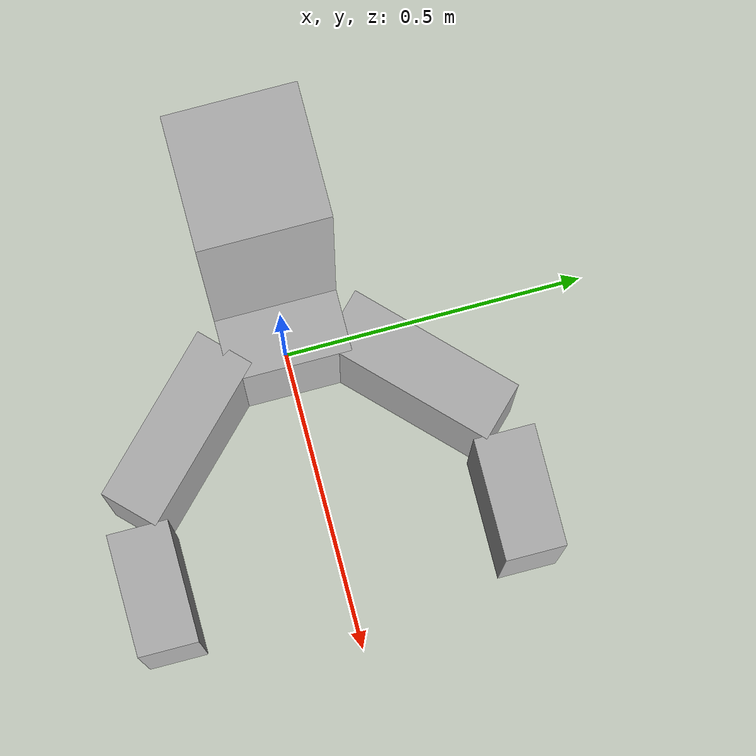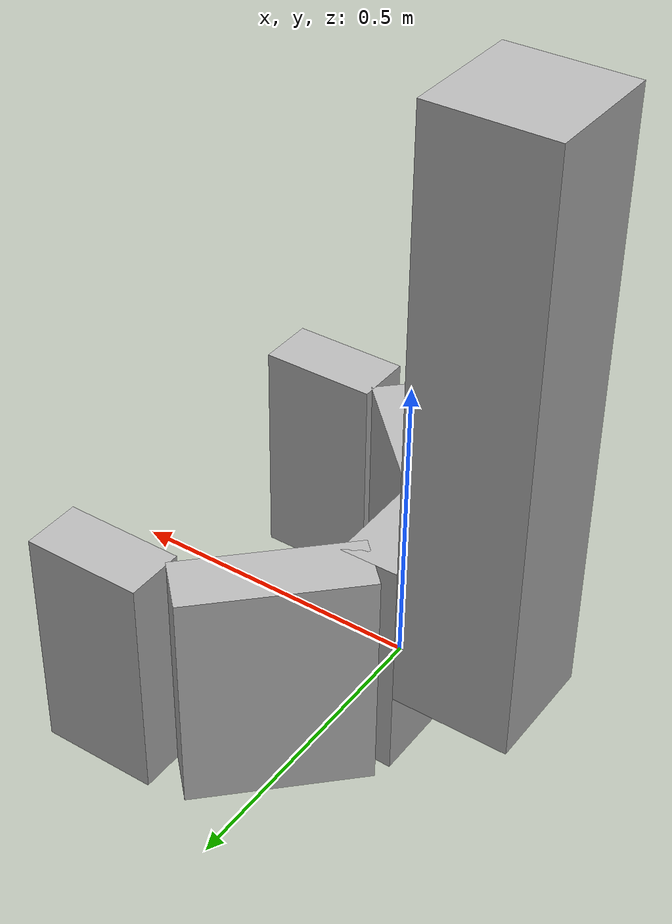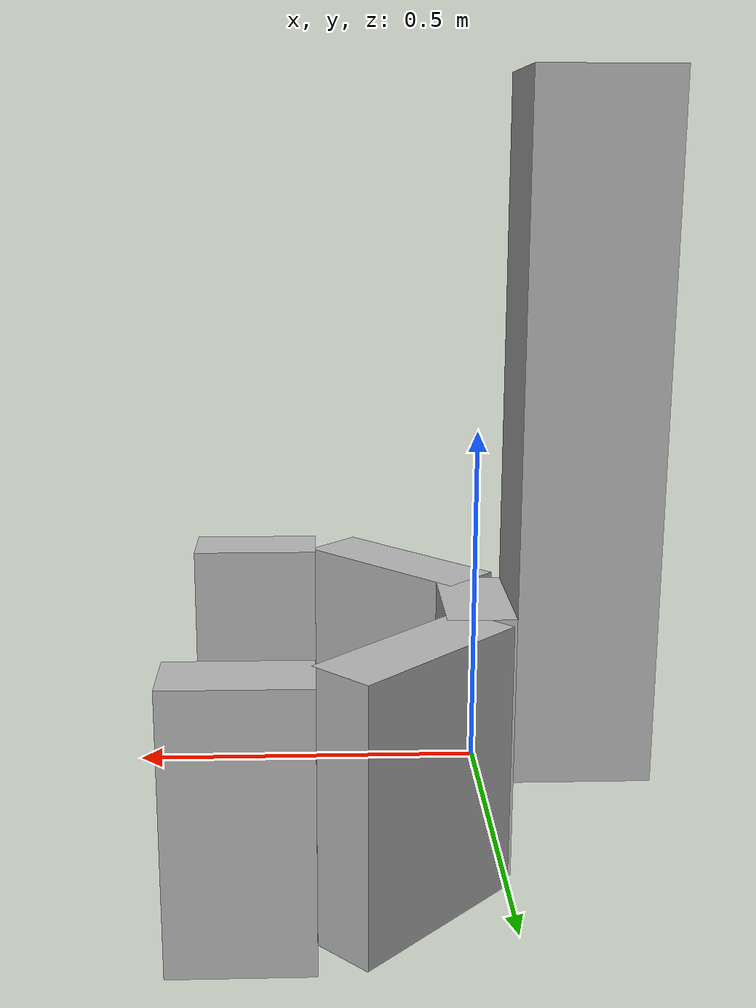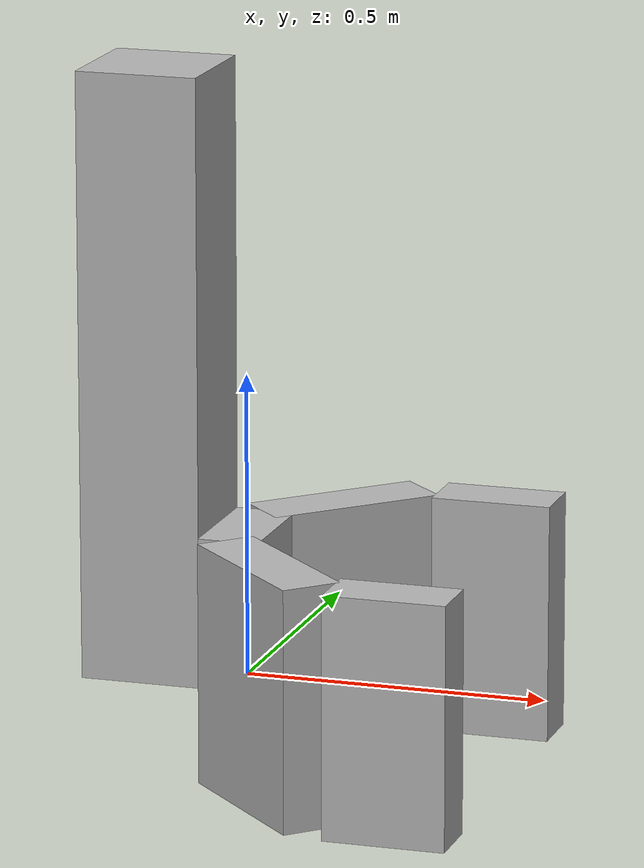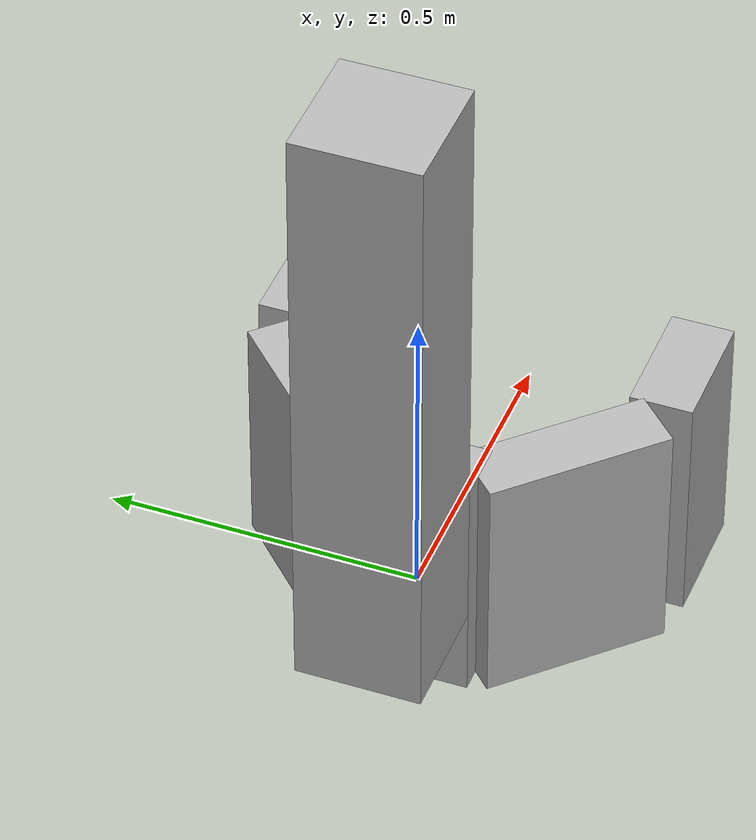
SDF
<?xml version="1.0"?>

<!-- http://gazebosim.org/tutorials/?tut=simple_gripper -->

<sdf version="1.4">
  <model name="foogrip">

	<!-- Links -->
    <link name="riser">
      <pose>-0.15 0.0 0.5 0 0 0</pose>
      <inertial>
        <pose>0 0 -0.5 0 0 0</pose>
        <inertia>
          <ixx>0.01</ixx>
          <ixy>0</ixy>
          <ixz>0</ixz>
          <iyy>0.01</iyy>
          <iyz>0</iyz>
          <izz>0.01</izz>
        </inertia>
        <mass>10.0</mass>
      </inertial>
      <collision name="collision">
        <geometry>
          <box>
            <size>0.2 0.2 1.0</size>
          </box>
        </geometry>
      </collision>
      <visual name="visual">
        <geometry>
          <box>
            <size>0.2 0.2 1.0</size>
          </box>
        </geometry>
        <material>
          <script>Gazebo/Purple</script>
        </material>
      </visual>
    </link>
    <link name="palm">
      <pose>0.0 0.0 0.05 0 0 0</pose>
      <inertial>
        <inertia>
          <ixx>0.01</ixx>
          <ixy>0</ixy>
          <ixz>0</ixz>
          <iyy>0.01</iyy>
          <iyz>0</iyz>
          <izz>0.01</izz>
        </inertia>
        <mass>0.5</mass>
      </inertial>
      <collision name="collision">
        <geometry>
          <box>
            <size>0.1 0.2 0.4</size>
          </box>
        </geometry>
      </collision>
      <visual name="visual">
        <geometry>
          <box>
            <size>0.1 0.2 0.4</size>
          </box>
        </geometry>
        <material>
          <script>Gazebo/Red</script>
        </material>
      </visual>
    </link>
    <link name="left_finger">
      <pose>0.1 0.2 0.05 0 0 -0.78539</pose>
      <inertial>
        <inertia>
          <ixx>0.01</ixx>
          <ixy>0</ixy>
          <ixz>0</ixz>
          <iyy>0.01</iyy>
          <iyz>0</iyz>
          <izz>0.01</izz>
        </inertia>
        <mass>0.1</mass>
      </inertial>
      <collision name="collision">
        <geometry>
          <box>
            <size>0.1 0.3 0.4</size>
          </box>
        </geometry>
      </collision>
      <visual name="visual">
        <geometry>
          <box>
            <size>0.1 0.3 0.4</size>
          </box>
        </geometry>
        <material>
          <script>Gazebo/Blue</script>
        </material>
      </visual>
    </link>
    <link name="left_finger_tip">
      <pose>0.336 0.3 0.05 0 0 1.5707</pose>
      <inertial>
        <inertia>
          <ixx>0.01</ixx>
          <ixy>0</ixy>
          <ixz>0</ixz>
          <iyy>0.01</iyy>
          <iyz>0</iyz>
          <izz>0.01</izz>
        </inertia>
        <mass>0.1</mass>
      </inertial>
      <collision name="collision">
        <geometry>
          <box>
            <size>0.1 0.2 0.4</size>
          </box>
        </geometry>
      </collision>
      <visual name="visual">
        <geometry>
          <box>
            <size>0.1 0.2 0.4</size>
          </box>
        </geometry>
        <material>
          <script>Gazebo/Blue</script>
        </material>
      </visual>
    </link>
    <link name="right_finger">
      <pose>0.1 -0.2 0.05 0 0 .78539</pose>
      <inertial>
        <inertia>
          <ixx>0.01</ixx>
          <ixy>0</ixy>
          <ixz>0</ixz>
          <iyy>0.01</iyy>
          <iyz>0</iyz>
          <izz>0.01</izz>
        </inertia>
        <mass>0.1</mass>
      </inertial>
      <collision name="collision">
        <geometry>
          <box>
            <size>0.1 0.3 0.4</size>
          </box>
        </geometry>
      </collision>
      <visual name="visual">
        <geometry>
          <box>
            <size>0.1 0.3 0.4</size>
          </box>
        </geometry>
        <material>
          <script>Gazebo/Green</script>
        </material>
      </visual>
    </link>
    <link name="right_finger_tip">
      <pose>0.336 -0.3 0.05 0 0 1.5707</pose>
      <inertial>
        <inertia>
          <ixx>0.01</ixx>
          <ixy>0</ixy>
          <ixz>0</ixz>
          <iyy>0.01</iyy>
          <iyz>0</iyz>
          <izz>0.01</izz>
        </inertia>
        <mass>0.1</mass>
      </inertial>
      <collision name="collision">
        <geometry>
          <box>
            <size>0.1 0.2 0.4</size>
          </box>
        </geometry>
      </collision>
      <visual name="visual">
        <geometry>
          <box>
            <size>0.1 0.2 0.4</size>
          </box>
        </geometry>
        <material>
          <script>Gazebo/Green</script>
        </material>
      </visual>
    </link>

    <!-- Joints -->
    <joint name="palm_left_finger" type="revolute">
      <pose>0 -0.15 0 0 0 0</pose>
      <child>left_finger</child>
      <parent>palm</parent>
      <axis>
        <limit>
          <lower>-0.4</lower>
          <upper>0.4</upper>
        </limit>
        <xyz>0 0 1</xyz>
      </axis>
    </joint>
    <joint name="left_finger_tip" type="revolute">
      <pose>0 0.1 0 0 0 0</pose>
      <child>left_finger_tip</child>
      <parent>left_finger</parent>
      <axis>
        <limit>
          <lower>-0.4</lower>
          <upper>0.4</upper>
        </limit>
        <xyz>0 0 1</xyz>
      </axis>
    </joint>
    <joint name="palm_right_finger" type="revolute">
      <pose>0 0.15 0 0 0 0</pose>
      <child>right_finger</child>
      <parent>palm</parent>
      <axis>
        <limit>
          <lower>-0.4</lower>
          <upper>0.4</upper>
        </limit>
        <xyz>0 0 1</xyz>
      </axis>
    </joint>
    <joint name="right_finger_tip" type="revolute">
      <pose>0 0.1 0 0 0 0</pose>
      <child>right_finger_tip</child>
      <parent>right_finger</parent>
      <axis>
        <limit>
          <lower>-0.4</lower>
          <upper>0.4</upper>
        </limit>
        <xyz>0 0 1</xyz>
      </axis>
    </joint>
    <joint name="palm_riser" type="prismatic">
      <child>palm</child>
      <parent>riser</parent>
      <axis>
        <limit>
          <lower>0</lower>
          <upper>0.9</upper>
        </limit>
        <xyz>0 0 1</xyz>
      </axis>
    </joint>

	<gripper name="gripper">
	  <!-- http://answers.ros.org/question/201625/turtlebot-arm-on-gazebo-lets-fall-all-grasped-objects/ -->
	  <!-- http://answers.gazebosim.org/question/4324/gripper-tag-gazebophysicsgripper-doesnt-create-the-fixed-joint-between-the-gripper-and-the-object-within-it/ -->
	  <grasp_check>
		<attach_steps>1</attach_steps>
		<detach_steps>10</detach_steps>
	  </grasp_check>
	  <!-- These surfaces move to press against the object. -->
	  <!-- (these are link names; grep for "link" to see a full list) -->
	  <gripper_link>left_finger</gripper_link>
	  <gripper_link>right_finger</gripper_link>
	  <gripper_link>left_finger_tip</gripper_link>
	  <gripper_link>right_finger_tip</gripper_link>
	  <!-- This surface is held in place. -->
	  <palm_link>palm</palm_link>
	</gripper>

    <!-- In general, leave false.  Only real reason to change is when
         deciding on a geometry, since static models are easier to visually
         debug (since they do not move). -->
    <static>false</static>

  </model>
</sdf>
